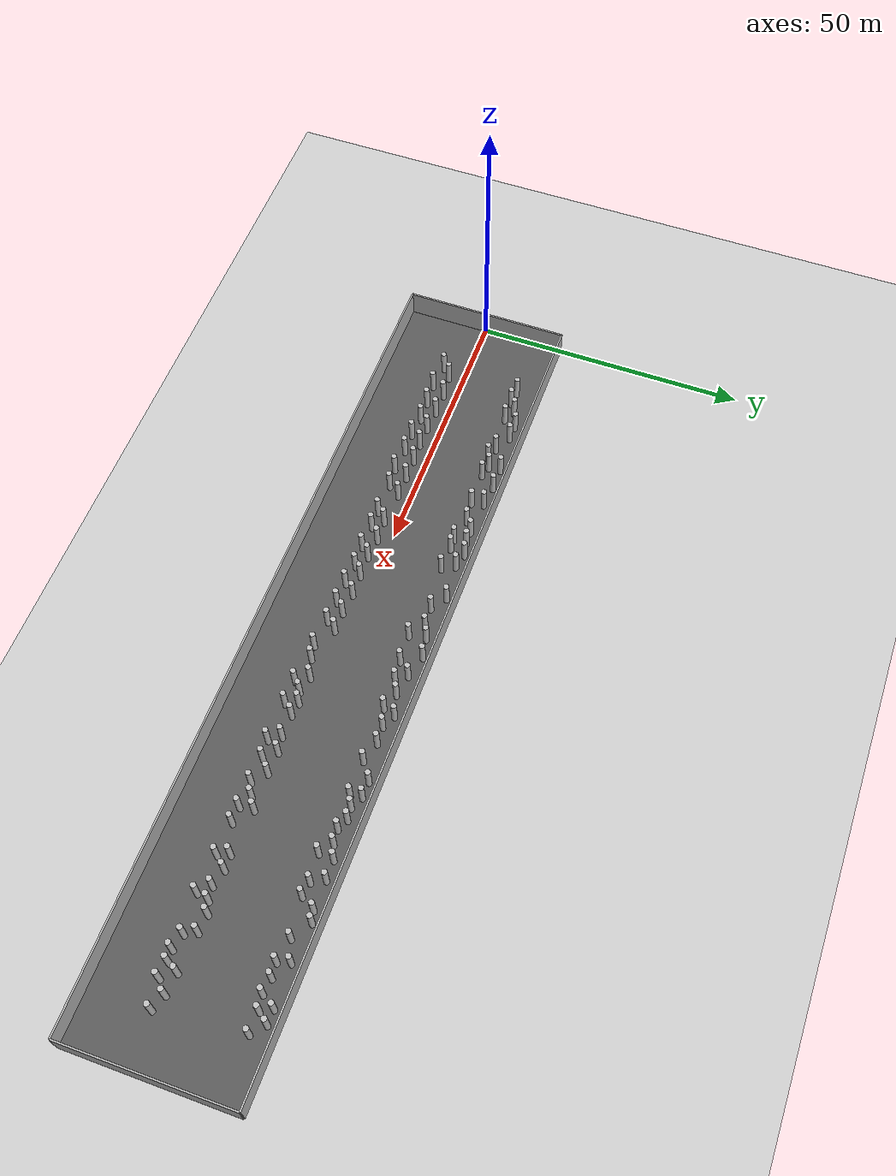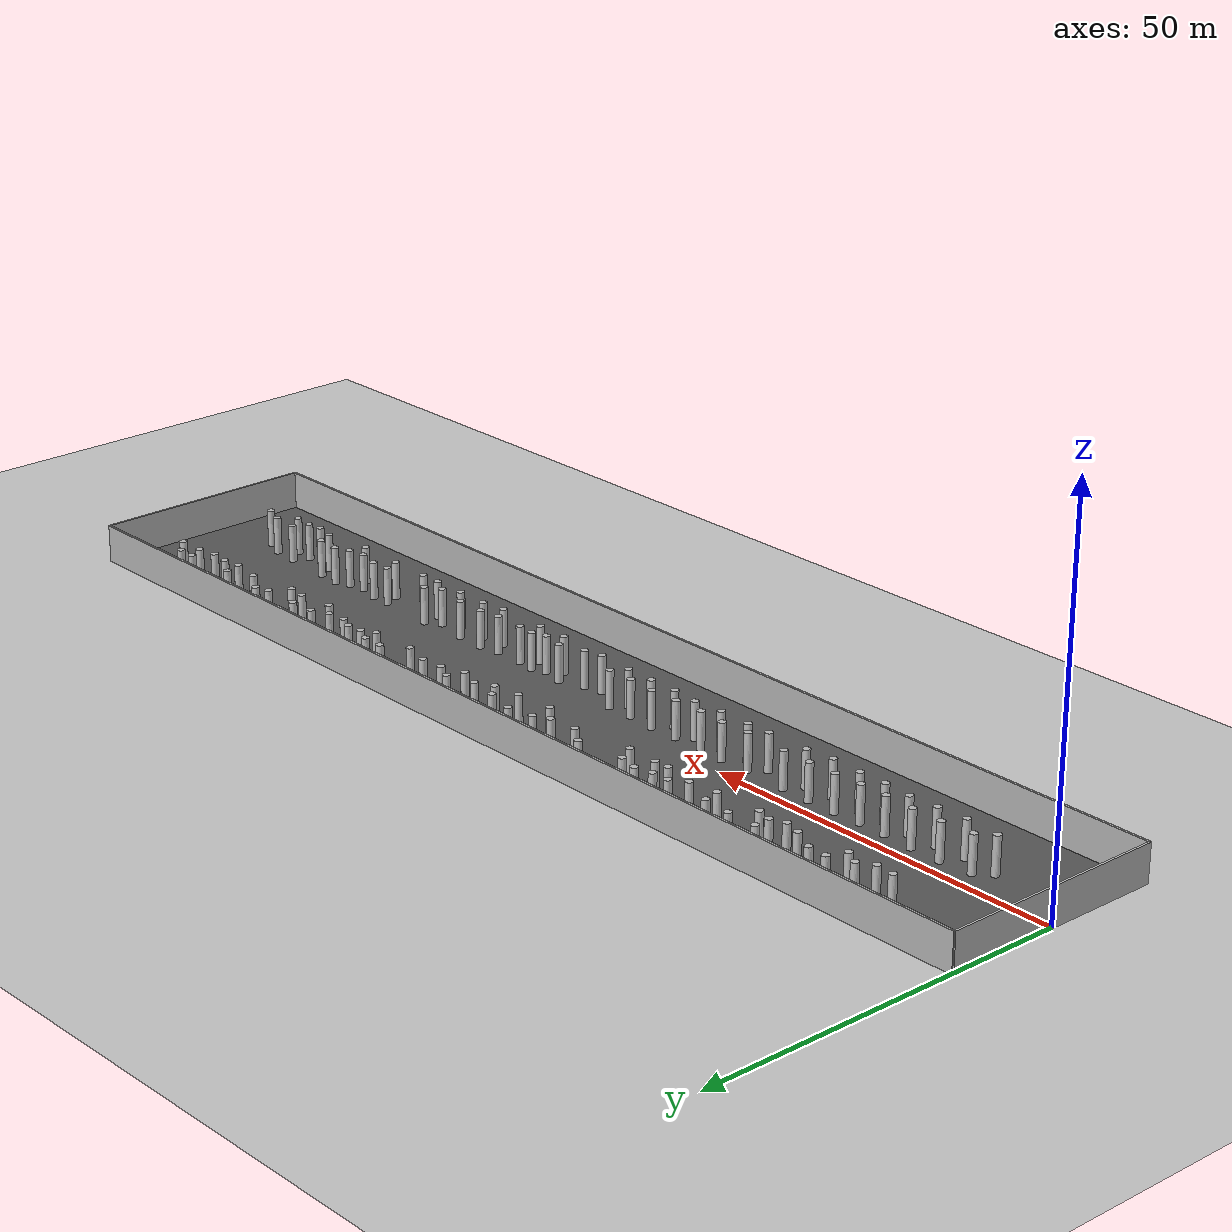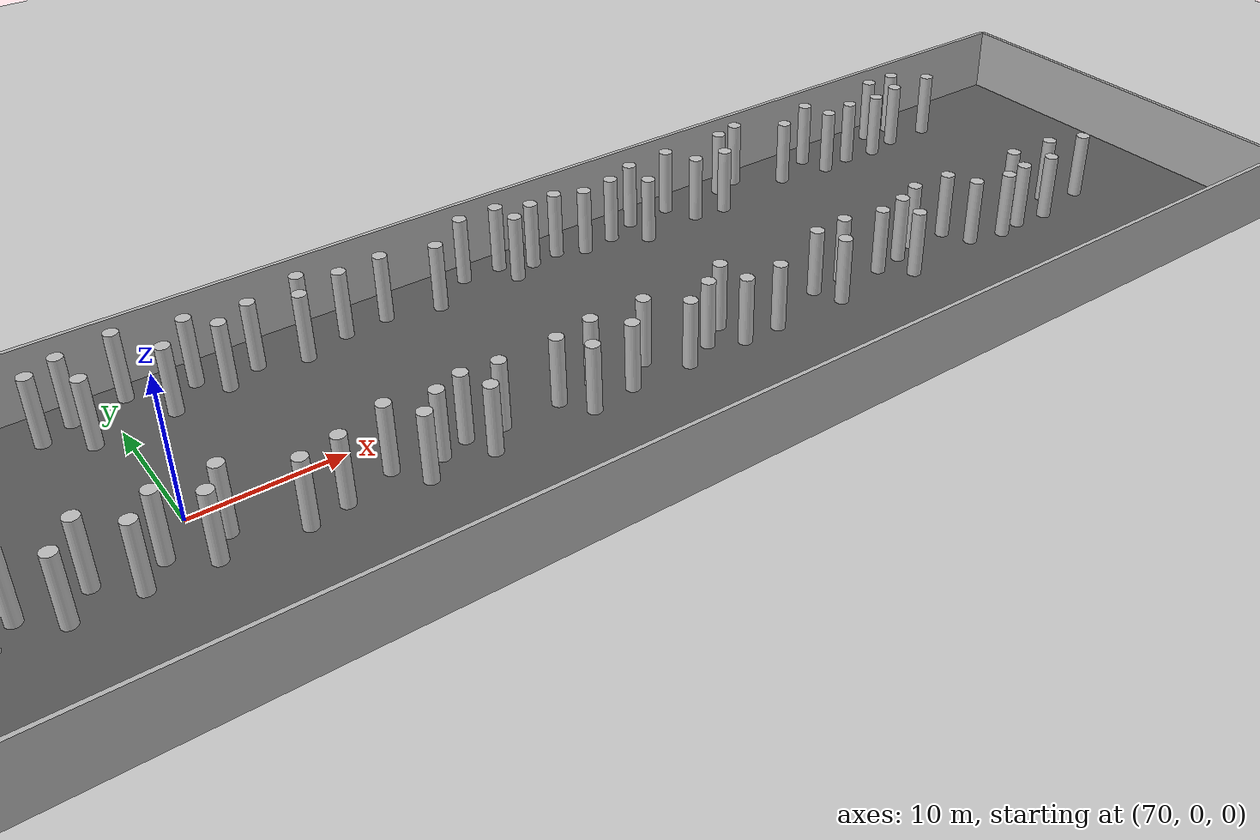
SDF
<?xml version="1.0" ?>
<sdf version="1.5">
  <world name="default">
    <plugin name="gazebo_ros_state" filename="libgazebo_ros_state.so">
      <ros>
        <namespace>/gazebo</namespace>
      </ros>
      <update_rate>20.0</update_rate>
    </plugin>

    <include><uri>model://sun</uri></include>
    <include><uri>model://ground_plane</uri></include>

    <model name="corridor_floor">
      <static>true</static>
      <pose>75 0 0.01 0 0 0</pose>
      <link name="link">
        <collision name="collision">
          <geometry><box><size>150 30 0.02</size></box></geometry>
        </collision>
        <visual name="visual">
          <geometry><box><size>150 30 0.02</size></box></geometry>
          <material>
            <ambient>0.25 0.25 0.25 1</ambient>
            <diffuse>0.35 0.35 0.35 1</diffuse>
          </material>
        </visual>
      </link>
    </model>

    <physics name="default_physics" default="0" type="ode">
      <gravity>0 0 -9.8066</gravity>
      <ode>
        <solver>
          <type>quick</type>
          <iters>10</iters>
          <sor>1.3</sor>
          <use_dynamic_moi_rescaling>0</use_dynamic_moi_rescaling>
        </solver>
        <constraints>
          <cfm>0</cfm>
          <erp>0.2</erp>
          <contact_max_correcting_vel>100</contact_max_correcting_vel>
          <contact_surface_layer>0.001</contact_surface_layer>
        </constraints>
      </ode>
      <max_step_size>0.004</max_step_size>
      <real_time_factor>1</real_time_factor>
      <real_time_update_rate>250</real_time_update_rate>
      <magnetic_field>6.0e-6 2.3e-5 -4.2e-5</magnetic_field>
    </physics>

    <model name="left_wall">
      <static>true</static>
      <pose>75 15.15 2.5 0 0 0</pose>
      <link name="link">
        <collision name="collision">
          <geometry><box><size>150 0.3 5</size></box></geometry>
        </collision>
        <visual name="visual">
          <geometry><box><size>150 0.3 5</size></box></geometry>
        </visual>
      </link>
    </model>

    <model name="right_wall">
      <static>true</static>
      <pose>75 -15.15 2.5 0 0 0</pose>
      <link name="link">
        <collision name="collision">
          <geometry><box><size>150 0.3 5</size></box></geometry>
        </collision>
        <visual name="visual">
          <geometry><box><size>150 0.3 5</size></box></geometry>
        </visual>
      </link>
    </model>

    <model name="start_wall">
      <static>true</static>
      <pose>0 0 2.5 0 0 0</pose>
      <link name="link">
        <collision name="collision">
          <geometry><box><size>0.3 30.3 5</size></box></geometry>
        </collision>
        <visual name="visual">
          <geometry><box><size>0.3 30.3 5</size></box></geometry>
        </visual>
      </link>
    </model>

    <model name="end_wall">
      <static>true</static>
      <pose>150 0 2.5 0 0 0</pose>
      <link name="link">
        <collision name="collision">
          <geometry><box><size>0.3 30.3 5</size></box></geometry>
        </collision>
        <visual name="visual">
          <geometry><box><size>0.3 30.3 5</size></box></geometry>
        </visual>
      </link>
    </model>

    <include><name>cylinder_000</name><uri>model://cylinder_r05_h5</uri><pose>16.691 -4.809 2.5 0 0 0</pose></include>
    <include><name>cylinder_001</name><uri>model://cylinder_r05_h5</uri><pose>18.079 -2.251 2.5 0 0 0</pose></include>
    <include><name>cylinder_002</name><uri>model://cylinder_r05_h5</uri><pose>20.752 -4.530 2.5 0 0 0</pose></include>
    <include><name>cylinder_003</name><uri>model://cylinder_r05_h5</uri><pose>22.284 -2.245 2.5 0 0 0</pose></include>
    <include><name>cylinder_004</name><uri>model://cylinder_r05_h5</uri><pose>24.695 -4.318 2.5 0 0 0</pose></include>
    <include><name>cylinder_005</name><uri>model://cylinder_r05_h5</uri><pose>26.423 -2.428 2.5 0 0 0</pose></include>
    <include><name>cylinder_006</name><uri>model://cylinder_r05_h5</uri><pose>28.613 -4.617 2.5 0 0 0</pose></include>
    <include><name>cylinder_007</name><uri>model://cylinder_r05_h5</uri><pose>30.233 -2.452 2.5 0 0 0</pose></include>
    <include><name>cylinder_008</name><uri>model://cylinder_r05_h5</uri><pose>32.428 -4.558 2.5 0 0 0</pose></include>
    <include><name>cylinder_009</name><uri>model://cylinder_r05_h5</uri><pose>34.002 -2.249 2.5 0 0 0</pose></include>
    <include><name>cylinder_010</name><uri>model://cylinder_r05_h5</uri><pose>36.851 -4.842 2.5 0 0 0</pose></include>
    <include><name>cylinder_011</name><uri>model://cylinder_r05_h5</uri><pose>37.973 -2.209 2.5 0 0 0</pose></include>
    <include><name>cylinder_012</name><uri>model://cylinder_r05_h5</uri><pose>40.632 -4.379 2.5 0 0 0</pose></include>
    <include><name>cylinder_013</name><uri>model://cylinder_r05_h5</uri><pose>42.055 -2.210 2.5 0 0 0</pose></include>
    <include><name>cylinder_014</name><uri>model://cylinder_r05_h5</uri><pose>46.538 -4.311 2.5 0 0 0</pose></include>
    <include><name>cylinder_015</name><uri>model://cylinder_r05_h5</uri><pose>48.155 -2.574 2.5 0 0 0</pose></include>
    <include><name>cylinder_016</name><uri>model://cylinder_r05_h5</uri><pose>49.922 -4.255 2.5 0 0 0</pose></include>
    <include><name>cylinder_017</name><uri>model://cylinder_r05_h5</uri><pose>52.169 -2.300 2.5 0 0 0</pose></include>
    <include><name>cylinder_018</name><uri>model://cylinder_r05_h5</uri><pose>54.404 -4.300 2.5 0 0 0</pose></include>
    <include><name>cylinder_019</name><uri>model://cylinder_r05_h5</uri><pose>55.979 -2.605 2.5 0 0 0</pose></include>
    <include><name>cylinder_020</name><uri>model://cylinder_r05_h5</uri><pose>58.482 -3.985 2.5 0 0 0</pose></include>
    <include><name>cylinder_021</name><uri>model://cylinder_r05_h5</uri><pose>60.033 -2.453 2.5 0 0 0</pose></include>
    <include><name>cylinder_022</name><uri>model://cylinder_r05_h5</uri><pose>62.297 -4.322 2.5 0 0 0</pose></include>
    <include><name>cylinder_023</name><uri>model://cylinder_r05_h5</uri><pose>64.048 -2.281 2.5 0 0 0</pose></include>
    <include><name>cylinder_024</name><uri>model://cylinder_r05_h5</uri><pose>66.320 -4.296 2.5 0 0 0</pose></include>
    <include><name>cylinder_025</name><uri>model://cylinder_r05_h5</uri><pose>68.008 -2.594 2.5 0 0 0</pose></include>
    <include><name>cylinder_026</name><uri>model://cylinder_r05_h5</uri><pose>70.366 -4.381 2.5 0 0 0</pose></include>
    <include><name>cylinder_027</name><uri>model://cylinder_r05_h5</uri><pose>71.660 -2.551 2.5 0 0 0</pose></include>
    <include><name>cylinder_028</name><uri>model://cylinder_r05_h5</uri><pose>88.854 -3.285 2.5 0 0 0</pose></include>
    <include><name>cylinder_029</name><uri>model://cylinder_r05_h5</uri><pose>81.379 -3.051 2.5 0 0 0</pose></include>
    <include><name>cylinder_030</name><uri>model://cylinder_r05_h5</uri><pose>86.403 -3.027 2.5 0 0 0</pose></include>
    <include><name>cylinder_031</name><uri>model://cylinder_r05_h5</uri><pose>78.037 -4.211 2.5 0 0 0</pose></include>
    <include><name>cylinder_032</name><uri>model://cylinder_r05_h5</uri><pose>84.450 -3.686 2.5 0 0 0</pose></include>
    <include><name>cylinder_033</name><uri>model://cylinder_r05_h5</uri><pose>82.872 -5.165 2.5 0 0 0</pose></include>
    <include><name>cylinder_034</name><uri>model://cylinder_r05_h5</uri><pose>95.769 -2.764 2.5 0 0 0</pose></include>
    <include><name>cylinder_035</name><uri>model://cylinder_r05_h5</uri><pose>87.219 -5.135 2.5 0 0 0</pose></include>
    <include><name>cylinder_036</name><uri>model://cylinder_r05_h5</uri><pose>99.752 -2.849 2.5 0 0 0</pose></include>
    <include><name>cylinder_037</name><uri>model://cylinder_r05_h5</uri><pose>92.947 -3.251 2.5 0 0 0</pose></include>
    <include><name>cylinder_038</name><uri>model://cylinder_r05_h5</uri><pose>94.281 -5.231 2.5 0 0 0</pose></include>
    <include><name>cylinder_039</name><uri>model://cylinder_r05_h5</uri><pose>104.347 -3.685 2.5 0 0 0</pose></include>
    <include><name>cylinder_040</name><uri>model://cylinder_r05_h5</uri><pose>75.509 -4.760 2.5 0 0 0</pose></include>
    <include><name>cylinder_041</name><uri>model://cylinder_r05_h5</uri><pose>97.574 -4.706 2.5 0 0 0</pose></include>
    <include><name>cylinder_042</name><uri>model://cylinder_r05_h5</uri><pose>102.028 -4.826 2.5 0 0 0</pose></include>
    <include><name>cylinder_043</name><uri>model://cylinder_r05_h5</uri><pose>128.493 -4.428 2.5 0 0 0</pose></include>
    <include><name>cylinder_044</name><uri>model://cylinder_r05_h5</uri><pose>117.030 -2.770 2.5 0 0 0</pose></include>
    <include><name>cylinder_045</name><uri>model://cylinder_r05_h5</uri><pose>106.628 -4.847 2.5 0 0 0</pose></include>
    <include><name>cylinder_046</name><uri>model://cylinder_r05_h5</uri><pose>133.201 -4.778 2.5 0 0 0</pose></include>
    <include><name>cylinder_047</name><uri>model://cylinder_r05_h5</uri><pose>124.394 -2.244 2.5 0 0 0</pose></include>
    <include><name>cylinder_048</name><uri>model://cylinder_r05_h5</uri><pose>122.384 -3.035 2.5 0 0 0</pose></include>
    <include><name>cylinder_049</name><uri>model://cylinder_r05_h5</uri><pose>120.040 -3.453 2.5 0 0 0</pose></include>
    <include><name>cylinder_050</name><uri>model://cylinder_r05_h5</uri><pose>114.402 -2.914 2.5 0 0 0</pose></include>
    <include><name>cylinder_051</name><uri>model://cylinder_r05_h5</uri><pose>134.227 -2.802 2.5 0 0 0</pose></include>
    <include><name>cylinder_052</name><uri>model://cylinder_r05_h5</uri><pose>106.318 -2.399 2.5 0 0 0</pose></include>
    <include><name>cylinder_053</name><uri>model://cylinder_r05_h5</uri><pose>109.478 -4.837 2.5 0 0 0</pose></include>
    <include><name>cylinder_054</name><uri>model://cylinder_r05_h5</uri><pose>127.554 -2.435 2.5 0 0 0</pose></include>
    <include><name>cylinder_055</name><uri>model://cylinder_r05_h5</uri><pose>131.211 -5.082 2.5 0 0 0</pose></include>
    <include><name>cylinder_056</name><uri>model://cylinder_r05_h5</uri><pose>115.208 -4.904 2.5 0 0 0</pose></include>
    <include><name>cylinder_057</name><uri>model://cylinder_r05_h5</uri><pose>121.864 -5.260 2.5 0 0 0</pose></include>
    <include><name>cylinder_058</name><uri>model://cylinder_r05_h5</uri><pose>11.891 -4.349 2.5 0 0 0</pose></include>
    <include><name>cylinder_059</name><uri>model://cylinder_r05_h5</uri><pose>13.779 -2.686 2.5 0 0 0</pose></include>
    <include><name>cylinder_060</name><uri>model://cylinder_r05_h5</uri><pose>137.911 -3.087 2.5 0 0 0</pose></include>
    <include><name>cylinder_061</name><uri>model://cylinder_r05_h5</uri><pose>140.591 -4.077 2.5 0 0 0</pose></include>
    <include><name>cylinder_062</name><uri>model://cylinder_r05_h5</uri><pose>135.908 -5.016 2.5 0 0 0</pose></include>
    <include><name>cylinder_063</name><uri>model://cylinder_r05_h5</uri><pose>104.792 11.472 2.5 0 0 0</pose></include>
    <include><name>cylinder_064</name><uri>model://cylinder_r05_h5</uri><pose>79.454 11.754 2.5 0 0 0</pose></include>
    <include><name>cylinder_065</name><uri>model://cylinder_r05_h5</uri><pose>107.326 11.786 2.5 0 0 0</pose></include>
    <include><name>cylinder_066</name><uri>model://cylinder_r05_h5</uri><pose>127.675 10.708 2.5 0 0 0</pose></include>
    <include><name>cylinder_067</name><uri>model://cylinder_r05_h5</uri><pose>100.662 12.094 2.5 0 0 0</pose></include>
    <include><name>cylinder_068</name><uri>model://cylinder_r05_h5</uri><pose>59.246 13.333 2.5 0 0 0</pose></include>
    <include><name>cylinder_069</name><uri>model://cylinder_r05_h5</uri><pose>26.456 11.090 2.5 0 0 0</pose></include>
    <include><name>cylinder_070</name><uri>model://cylinder_r05_h5</uri><pose>114.345 10.681 2.5 0 0 0</pose></include>
    <include><name>cylinder_071</name><uri>model://cylinder_r05_h5</uri><pose>30.733 11.194 2.5 0 0 0</pose></include>
    <include><name>cylinder_072</name><uri>model://cylinder_r05_h5</uri><pose>71.376 13.439 2.5 0 0 0</pose></include>
    <include><name>cylinder_073</name><uri>model://cylinder_r05_h5</uri><pose>19.446 10.480 2.5 0 0 0</pose></include>
    <include><name>cylinder_074</name><uri>model://cylinder_r05_h5</uri><pose>43.118 11.311 2.5 0 0 0</pose></include>
    <include><name>cylinder_075</name><uri>model://cylinder_r05_h5</uri><pose>32.789 10.593 2.5 0 0 0</pose></include>
    <include><name>cylinder_076</name><uri>model://cylinder_r05_h5</uri><pose>113.184 12.937 2.5 0 0 0</pose></include>
    <include><name>cylinder_077</name><uri>model://cylinder_r05_h5</uri><pose>92.460 10.972 2.5 0 0 0</pose></include>
    <include><name>cylinder_078</name><uri>model://cylinder_r05_h5</uri><pose>15.463 10.352 2.5 0 0 0</pose></include>
    <include><name>cylinder_079</name><uri>model://cylinder_r05_h5</uri><pose>75.543 12.367 2.5 0 0 0</pose></include>
    <include><name>cylinder_080</name><uri>model://cylinder_r05_h5</uri><pose>73.389 10.141 2.5 0 0 0</pose></include>
    <include><name>cylinder_081</name><uri>model://cylinder_r05_h5</uri><pose>120.244 13.431 2.5 0 0 0</pose></include>
    <include><name>cylinder_082</name><uri>model://cylinder_r05_h5</uri><pose>135.358 11.215 2.5 0 0 0</pose></include>
    <include><name>cylinder_083</name><uri>model://cylinder_r05_h5</uri><pose>123.582 11.344 2.5 0 0 0</pose></include>
    <include><name>cylinder_084</name><uri>model://cylinder_r05_h5</uri><pose>65.775 11.805 2.5 0 0 0</pose></include>
    <include><name>cylinder_085</name><uri>model://cylinder_r05_h5</uri><pose>53.866 10.382 2.5 0 0 0</pose></include>
    <include><name>cylinder_086</name><uri>model://cylinder_r05_h5</uri><pose>109.525 10.115 2.5 0 0 0</pose></include>
    <include><name>cylinder_087</name><uri>model://cylinder_r05_h5</uri><pose>12.907 10.603 2.5 0 0 0</pose></include>
    <include><name>cylinder_088</name><uri>model://cylinder_r05_h5</uri><pose>34.770 13.423 2.5 0 0 0</pose></include>
    <include><name>cylinder_089</name><uri>model://cylinder_r05_h5</uri><pose>127.045 12.860 2.5 0 0 0</pose></include>
    <include><name>cylinder_090</name><uri>model://cylinder_r05_h5</uri><pose>77.105 10.612 2.5 0 0 0</pose></include>
    <include><name>cylinder_091</name><uri>model://cylinder_r05_h5</uri><pose>30.580 13.407 2.5 0 0 0</pose></include>
    <include><name>cylinder_092</name><uri>model://cylinder_r05_h5</uri><pose>134.305 13.153 2.5 0 0 0</pose></include>
    <include><name>cylinder_093</name><uri>model://cylinder_r05_h5</uri><pose>39.144 10.834 2.5 0 0 0</pose></include>
    <include><name>cylinder_094</name><uri>model://cylinder_r05_h5</uri><pose>68.258 9.744 2.5 0 0 0</pose></include>
    <include><name>cylinder_095</name><uri>model://cylinder_r05_h5</uri><pose>132.806 10.686 2.5 0 0 0</pose></include>
    <include><name>cylinder_096</name><uri>model://cylinder_r05_h5</uri><pose>98.794 11.161 2.5 0 0 0</pose></include>
    <include><name>cylinder_097</name><uri>model://cylinder_r05_h5</uri><pose>83.285 12.887 2.5 0 0 0</pose></include>
    <include><name>cylinder_098</name><uri>model://cylinder_r05_h5</uri><pose>82.496 10.693 2.5 0 0 0</pose></include>
    <include><name>cylinder_099</name><uri>model://cylinder_r05_h5</uri><pose>130.159 10.990 2.5 0 0 0</pose></include>
    <include><name>cylinder_100</name><uri>model://cylinder_r05_h5</uri><pose>88.806 11.962 2.5 0 0 0</pose></include>
    <include><name>cylinder_101</name><uri>model://cylinder_r05_h5</uri><pose>116.857 10.377 2.5 0 0 0</pose></include>
    <include><name>cylinder_102</name><uri>model://cylinder_r05_h5</uri><pose>98.410 13.138 2.5 0 0 0</pose></include>
    <include><name>cylinder_103</name><uri>model://cylinder_r05_h5</uri><pose>85.709 11.728 2.5 0 0 0</pose></include>
    <include><name>cylinder_104</name><uri>model://cylinder_r05_h5</uri><pose>67.852 12.784 2.5 0 0 0</pose></include>
    <include><name>cylinder_105</name><uri>model://cylinder_r05_h5</uri><pose>45.057 12.744 2.5 0 0 0</pose></include>
    <include><name>cylinder_106</name><uri>model://cylinder_r05_h5</uri><pose>38.679 13.024 2.5 0 0 0</pose></include>
    <include><name>cylinder_107</name><uri>model://cylinder_r05_h5</uri><pose>47.441 10.479 2.5 0 0 0</pose></include>
    <include><name>cylinder_108</name><uri>model://cylinder_r05_h5</uri><pose>61.999 11.474 2.5 0 0 0</pose></include>
    <include><name>cylinder_109</name><uri>model://cylinder_r05_h5</uri><pose>49.455 10.578 2.5 0 0 0</pose></include>
    <include><name>cylinder_110</name><uri>model://cylinder_r05_h5</uri><pose>17.431 11.600 2.5 0 0 0</pose></include>
    <include><name>cylinder_111</name><uri>model://cylinder_r05_h5</uri><pose>28.758 10.407 2.5 0 0 0</pose></include>
    <include><name>cylinder_112</name><uri>model://cylinder_r05_h5</uri><pose>49.899 13.312 2.5 0 0 0</pose></include>
    <include><name>cylinder_113</name><uri>model://cylinder_r05_h5</uri><pose>102.805 12.333 2.5 0 0 0</pose></include>
    <include><name>cylinder_114</name><uri>model://cylinder_r05_h5</uri><pose>23.195 12.684 2.5 0 0 0</pose></include>
    <include><name>cylinder_115</name><uri>model://cylinder_r05_h5</uri><pose>138.991 11.162 2.5 0 0 0</pose></include>
    <include><name>cylinder_116</name><uri>model://cylinder_r05_h5</uri><pose>52.607 12.682 2.5 0 0 0</pose></include>
    <include><name>cylinder_117</name><uri>model://cylinder_r05_h5</uri><pose>95.551 13.157 2.5 0 0 0</pose></include>
    <include><name>cylinder_118</name><uri>model://cylinder_r05_h5</uri><pose>109.719 12.762 2.5 0 0 0</pose></include>
    <include><name>cylinder_119</name><uri>model://cylinder_r05_h5</uri><pose>136.787 13.110 2.5 0 0 0</pose></include>
    <include><name>cylinder_120</name><uri>model://cylinder_r05_h5</uri><pose>20.524 12.829 2.5 0 0 0</pose></include>
    <include><name>cylinder_121</name><uri>model://cylinder_r05_h5</uri><pose>47.449 12.802 2.5 0 0 0</pose></include>
    <include><name>cylinder_122</name><uri>model://cylinder_r05_h5</uri><pose>118.296 12.908 2.5 0 0 0</pose></include>

  </world>
</sdf>

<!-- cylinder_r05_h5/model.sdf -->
<sdf version="1.5">
  <model name="cylinder_r05_h5">
    <static>true</static>
    <link name="link">
      <collision name="collision">
        <geometry>
          <cylinder>
            <radius>0.5</radius>
            <length>5</length>
          </cylinder>
        </geometry>
      </collision>
      <visual name="visual">
        <geometry>
          <cylinder>
            <radius>0.5</radius>
            <length>5</length>
          </cylinder>
        </geometry>
        <material>
          <ambient>0.5 0.5 0.5 1</ambient>
          <diffuse>0.75 0.75 0.75 1</diffuse>
        </material>
      </visual>
    </link>
  </model>
</sdf>
